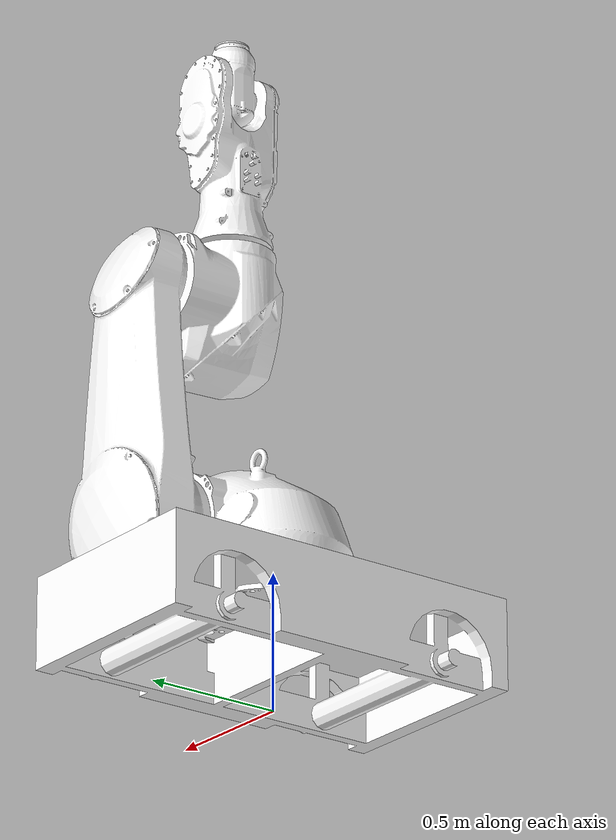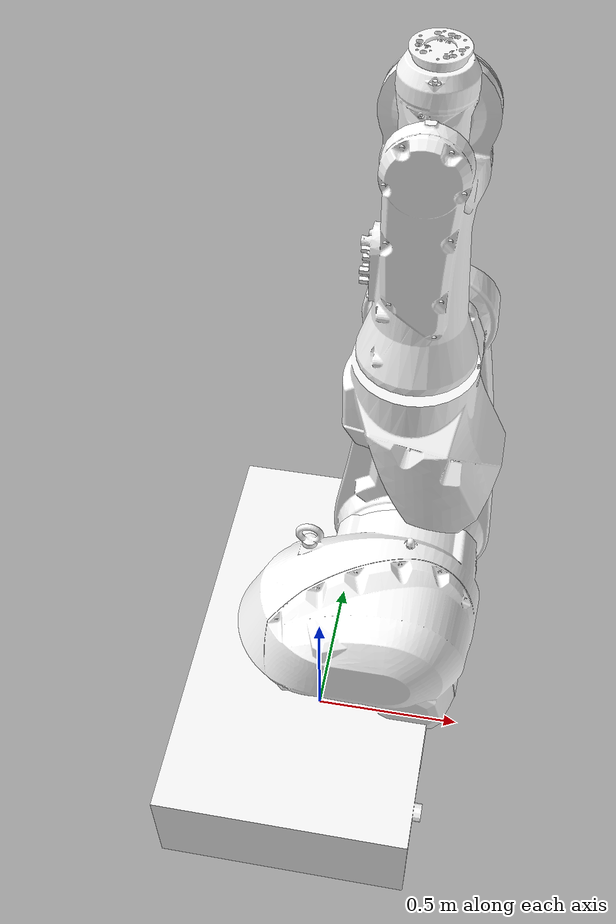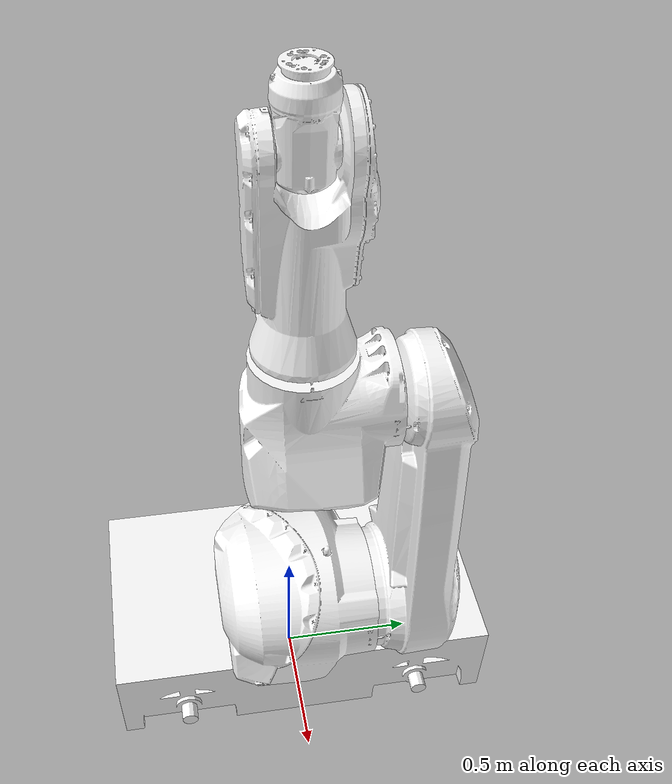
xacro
<?xml version="1.0" encoding="utf-8"?>
<robot
  name="stab" xmlns:xacro="http://ros.org/wiki/xacro">

<!-- ########### Defining the colors used in this robot ########### -->

  <material name="White">
      <color rgba="0.898039215686275 0.917647058823529 0.929411764705882 1"/>
  </material>

<!-- ##########################link########################## -->
  <link
    name="base_link">
    <inertial>
      <origin
        xyz="-0.267622237083787 0.0200000000000051 0.200000000000011"
        rpy="0 0 0" />
      <mass
        value="4.39348226818734E-05" />
      <inertia
        ixx="3.28704519934978E-11"
        ixy="-8.15804703511327E-22"
        ixz="1.61286938235907E-21"
        iyy="3.30462552559842E-10"
        iyz="-3.68952400699453E-27"
        izz="3.30462552559842E-10" />
    </inertial>
    <visual>
      <origin
        xyz="0 0 0"
        rpy="0 0 0" />
      <geometry>
        <mesh
          filename="package://robot_description/meshes/base_link.STL" />
      </geometry>
      <material
        name="">
        <color
          rgba="1 1 1 1" />
      </material>
    </visual>
    <collision>
      <origin
        xyz="0 0 0"
        rpy="0 0 0" />
      <geometry>
        <mesh
          filename="package://robot_description/meshes/base_link.STL" />
      </geometry>
    </collision>
  </link>

  <link
    name="Link1">
    <inertial>
      <origin
        xyz="0.078312 0.0074766 0.3645"
        rpy="0 0 0" />
      <mass
        value="0.013314" />
      <inertia
        ixx="6.1721E-07"
        ixy="4.3741E-08"
        ixz="-2.209E-08"
        iyy="4.6562E-07"
        iyz="8.2426E-08"
        izz="6.8481E-07" />
    </inertial>
    <visual>
      <origin
        xyz="0 0 0"
        rpy="0 0 0" />
      <geometry>
        <mesh
          filename="package://robot_description/meshes/Link1.STL" />
      </geometry>
      <material
        name="">
        <color
          rgba="1 1 1 1" />
      </material>
    </visual>
    <collision>
      <origin
        xyz="0 0 0"
        rpy="0 0 0" />
      <geometry>
        <mesh
          filename="package://robot_description/meshes/Link1.STL" />
      </geometry>
    </collision>
  </link>
  <joint
    name="joint_1"
    type="revolute">
    <origin
      xyz="0 0 0.347"
      rpy="0 0 0" />
    <parent
      link="base_link" />
    <child
      link="Link1" />
    <axis
      xyz="0 0 -1" />
    <limit
      lower="-3.14"
      upper="3.14"
      effort="100000"
      velocity="2" />
  </joint>

  <link
    name="Link2">
    <inertial>
      <origin
        xyz="746890000000 988550000000 175200000000"
        rpy="0 0 0" />
      <mass
        value="1.0511E+23" />
      <inertia
        ixx="5.5892E+45"
        ixy="-4.0943E+45"
        ixz="-7.2564E+44"
        iyy="3.2636E+45"
        iyz="-9.6042E+44"
        izz="8.5124E+45" />
    </inertial>
    <visual>
      <origin
        xyz="0 0 0"
        rpy="0 0 0" />
      <geometry>
        <mesh
          filename="package://robot_description/meshes/Link2.STL" />
      </geometry>
      <material
        name="">
        <color
          rgba="1 1 1 1" />
      </material>
    </visual>
    <collision>
      <origin
        xyz="0 0 0"
        rpy="0 0 0" />
      <geometry>
        <mesh
          filename="package://robot_description/meshes/Link2.STL" />
      </geometry>
    </collision>
  </link>
  <joint
    name="joint_2"
    type="revolute">
    <origin
      xyz="0.24994 0.239 0.29844"
      rpy="-1.5708 0 0" />
    <parent
      link="Link1" />
    <child
      link="Link2" />
    <axis
      xyz="0 0 -1" />
    <limit
      lower="-2.0071"
      upper="2.094"
      effort="100000"
      velocity="2" />
  </joint>
  <link
    name="Link3">
    <inertial>
      <origin
        xyz="0.0295766895166405 -0.0440500878929433 0.244531620234894"
        rpy="0 0 0" />
      <mass
        value="54.8497239391138" />
      <inertia
        ixx="1.57769910645969"
        ixy="0.224580870519169"
        ixz="-0.0606303870690732"
        iyy="1.27119892970626"
        iyz="0.0789769466616716"
        izz="1.28753475738862" />
    </inertial>
    <visual>
      <origin
        xyz="0 0 0"
        rpy="0 0 0" />
      <geometry>
        <mesh
          filename="package://robot_description/meshes/Link3.STL" />
      </geometry>
      <material
        name="">
        <color
          rgba="1 1 1 1" />
      </material>
    </visual>
    <collision>
      <origin
        xyz="0 0 0"
        rpy="0 0 0" />
      <geometry>
        <mesh
          filename="package://robot_description/meshes/Link3.STL" />
      </geometry>
    </collision>
  </link>
  <joint
    name="joint_3"
    type="revolute">
    <origin
      xyz="8.587E-05 -0.95252 0.04995"
      rpy="-3.1416 0 0" />
    <parent
      link="Link2" />
    <child
      link="Link3" />
    <axis
      xyz="0 0 -1" />
    <limit
      lower="-2.443"
      upper="2.53"
      effort="100000"
      velocity="2" />
  </joint>
  <link
    name="Link4">
    <inertial>
      <origin
        xyz="-0.0017742167367687 0.00510255610352519 0.324104531535401"
        rpy="0 0 0" />
      <mass
        value="32.6033860752865" />
      <inertia
        ixx="1.48753181974762"
        ixy="-0.000551665245867233"
        ixz="0.00197255156966189"
        iyy="1.35887057122941"
        iyz="-0.0549721505149915"
        izz="0.353593775329007" />
    </inertial>
    <visual>
      <origin
        xyz="0 0 0"
        rpy="0 0 0" />
      <geometry>
        <mesh
          filename="package://robot_description/meshes/Link4.STL" />
      </geometry>
      <material
        name="">
        <color
          rgba="1 1 1 1" />
      </material>
    </visual>
    <collision>
      <origin
        xyz="0 0 0"
        rpy="0 0 0" />
      <geometry>
        <mesh
          filename="package://robot_description/meshes/Link4.STL" />
      </geometry>
    </collision>
  </link>
  <joint
    name="joint_4"
    type="revolute">
    <origin
      xyz="-0.00011402 0.17664 0.28895"
      rpy="-1.5708 0 0" />
    <parent
      link="Link3" />
    <child
      link="Link4" />
    <axis
      xyz="0 0 -1" />
    <limit
      lower="-4.7123"
      upper="4.7123"
      effort="100000"
      velocity="2" />
  </joint>
  <link
    name="Link5">
    <inertial>
      <origin
        xyz="2.26929819879818E-05 -0.0493393380570577 -0.0797818987385228"
        rpy="0 0 0" />
      <mass
        value="5.30907305737881" />
      <inertia
        ixx="0.040378596382921"
        ixy="6.86120279421567E-06"
        ixz="3.92870699069878E-06"
        iyy="0.0164747799847275"
        iyz="-0.000153178723827858"
        izz="0.0399298921183855" />
    </inertial>
    <visual>
      <origin
        xyz="0 0 0"
        rpy="0 0 0" />
      <geometry>
        <mesh
          filename="package://robot_description/meshes/Link5.STL" />
      </geometry>
      <material
        name="">
        <color
          rgba="1 1 1 1" />
      </material>
    </visual>
    <collision>
      <origin
        xyz="0 0 0"
        rpy="0 0 0" />
      <geometry>
        <mesh
          filename="package://robot_description/meshes/Link5.STL" />
      </geometry>
    </collision>
  </link>
  <joint
    name="joint_5"
    type="revolute">
    <origin
      xyz="8.9662E-05 0.0785 0.62217"
      rpy="-1.5708 0 0" />
    <parent
      link="Link4" />
    <child
      link="Link5" />
    <axis
      xyz="0 0 -1" />
    <limit
      lower="-2.094"
      upper="2.094"
      effort="100000"
      velocity="2" />
  </joint>
  <link
    name="Link6">
    <inertial>
      <origin
        xyz="0.00025833309019499 -2.06849144375465E-08 -0.0126692850546037"
        rpy="0 0 0" />
      <mass
        value="0.205963576921912" />
      <inertia
        ixx="0.000189932098659272"
        ixy="2.10613190161523E-09"
        ixz="1.82397539372542E-07"
        iyy="0.000188825315775277"
        iyz="2.01174206869031E-11"
        izz="0.000359577566804308" />
    </inertial>
    <visual>
      <origin
        xyz="0 0 0"
        rpy="0 0 0" />
      <geometry>
        <mesh
          filename="package://robot_description/meshes/Link6.STL" />
      </geometry>
      <material
        name="">
        <color
          rgba="1 1 1 1" />
      </material>
    </visual>
    <collision>
      <origin
        xyz="0 0 0"
        rpy="0 0 0" />
      <geometry>
        <mesh
          filename="package://robot_description/meshes/Link6.STL" />
      </geometry>
    </collision>
  </link>
  <joint
    name="joint_6"
    type="revolute">
    <origin
      xyz="-0.00036826 -0.20708 -0.0805"
      rpy="1.5708 0 0" />
    <parent
      link="Link5" />
    <child
      link="Link6" />
    <axis
      xyz="0 0 -1" />
    <limit
      lower="-4.7123"
      upper="4.7123"
      effort="10000"
      velocity="2" />
  </joint>

<!-- Gazebo color -->
  <gazebo reference="base_link">
      <material>Gazebo/White</material>
  </gazebo>
  <gazebo reference="Link1">
      <material>Gazebo/White</material>
  </gazebo>
  <gazebo reference="Link2">
      <material>Gazebo/White</material>
  </gazebo>
  <gazebo reference="Link3">
      <material>Gazebo/White</material>
  </gazebo>
  <gazebo reference="Link4">
      <material>Gazebo/White</material>
  </gazebo>
  <gazebo reference="Link5">
      <material>Gazebo/White</material>
  </gazebo>
  <gazebo reference="Link6">
      <material>Gazebo/White</material>
  </gazebo>

<!-- Transmissions for ROS Control -->
  <xacro:macro name="transmission_block" params="joint_name">
      <transmission name="${joint_name}_trans">
          <type>transmission_interface/SimpleTransmission</type>
          <joint name="${joint_name}">
              <hardwareInterface>hardware_interface/PositionJointInterface</hardwareInterface>
          </joint>
          <actuator name="{joint_name}_motor">
              <hardwareInterface>hardware_interface/PositionJointInterface</hardwareInterface>
              <mechanicalReduction>1</mechanicalReduction>
          </actuator>
      </transmission>
  </xacro:macro>

  <xacro:transmission_block joint_name="joint_1"/>
  <xacro:transmission_block joint_name="joint_2"/>
  <xacro:transmission_block joint_name="joint_3"/>
  <xacro:transmission_block joint_name="joint_4"/>
  <xacro:transmission_block joint_name="joint_5"/>
  <xacro:transmission_block joint_name="joint_6"/>

<!-- ros_control plugin -->
  <gazebo>
      <plugin name="gazebo_ros_control" filename="libgazebo_ros_control.so">
          <robotNamespace>/stab</robotNamespace>
          <legacyModeNS>true</legacyModeNS>
      </plugin>
  </gazebo>

</robot>
